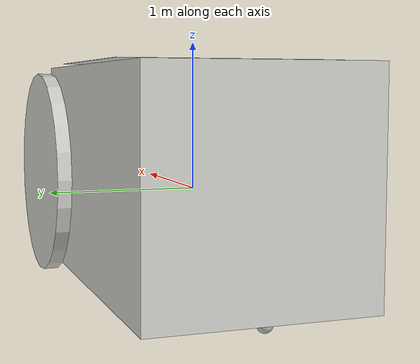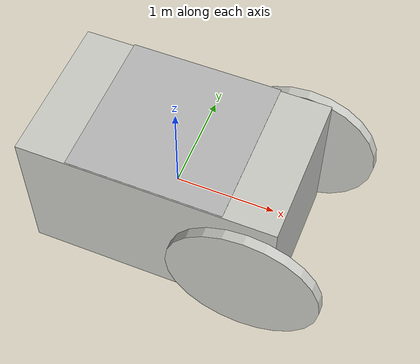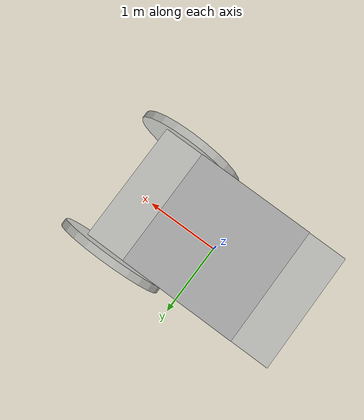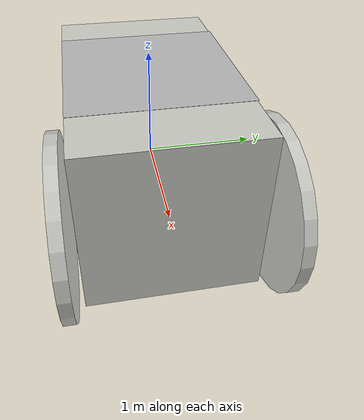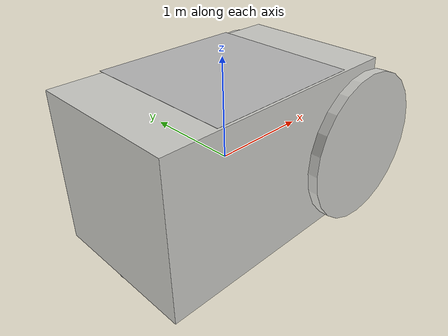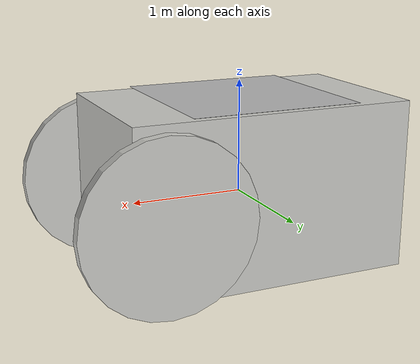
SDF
<?xml version='1.0'?>
<sdf version='1.4'>
  <model name="my_robot">
 <static>false</static>
<link name='chassis'>
            <pose>0 0 .1 0 0 0</pose>

            <collision name='collision'>
              <geometry>
                <box>
                  <size>2.5 1.5 1.5</size>
                </box>
              </geometry>
            </collision>

            <visual name='visual'>
              <geometry>
                <box>
                  <size>2.5 1.5 1.5</size>
                </box>
              </geometry>
<material>
      	 <script>
       	 	<uri>file://media/materials/scripts/gazebo.material</uri>
        <name>Gazebo/CeilingTiled</name>
      	</script>
        </material>
            </visual>
<visual name="target">
<pose>0 0 0.77 0 0 0</pose>
        <cast_shadows>false</cast_shadows>
        <geometry>
          <plane>
            <normal>0 0 1</normal>
            <size>1.5 1.5</size>
          </plane>
        </geometry>
        <material>
      	 <script>
       	 	<uri>model://my_robot/materials/scripts</uri>
       	 	<uri>model://my_robot/materials/textures</uri>
       	 	<name>Target/Image</name>
      	</script>
        </material>
      </visual>
<collision name='caster_collision'>
            <pose>-1.2 0 -0.75 0 0 0</pose>
            <geometry>
                <sphere>
                <radius>.05</radius>
              </sphere>
            </geometry>

            <surface>
              <friction>
                <ode>
                  <mu>0</mu>
                  <mu2>0</mu2>
                  <slip1>1.0</slip1>
                  <slip2>1.0</slip2>
                </ode>
              </friction>
            </surface>
          </collision>

          <visual name='caster_visual'>
            <pose>-1.2 0 -0.75 0 0 0</pose>
            <geometry>
              <sphere>
                <radius>.05</radius>
              </sphere>
            </geometry>
          </visual>
          </link>
<link name="left_wheel">
        <pose>1.0 0.85 0.05 0 1.5707 1.5707</pose>
        <collision name="collision">
          <geometry>
            <cylinder>
              <radius>.75</radius>
              <length>.1</length>
            </cylinder>
          </geometry>
        </collision>
        <visual name="visual">
          <geometry>
            <cylinder>
              <radius>.75</radius>
              <length>.1</length>
            </cylinder>
          </geometry>
<material>
      	 <script>
       	 	<uri>file://media/materials/scripts/gazebo.material</uri>
        <name>Gazebo/CeilingTiled</name>
      	</script>
        </material>
        </visual>
      </link>
<link name="right_wheel">
        <pose>1.0 -0.85 0.05 0 1.5707 1.5707</pose>
        <collision name="collision">
          <geometry>
            <cylinder>
              <radius>.75</radius>
              <length>.1</length>
            </cylinder>
          </geometry>
        </collision>
        <visual name="visual">
          <geometry>
            <cylinder>
              <radius>.75</radius>
              <length>.1</length>
            </cylinder>
          </geometry>
<material>
      	 <script>
       	 	<uri>file://media/materials/scripts/gazebo.material</uri>
        <name>Gazebo/CeilingTiled</name>
      	</script>
        </material>
        </visual>

      </link>
      <joint type="revolute" name="left_wheel_hinge">
        <pose>0 0 -0.03 0 0 0</pose>
        <child>left_wheel</child>
        <parent>chassis</parent>
        <axis>
          <xyz>0 1 0</xyz>
        </axis>
      </joint>

      <joint type="revolute" name="right_wheel_hinge">
        <pose>0 0 0.03 0 0 0</pose>
        <child>right_wheel</child>
        <parent>chassis</parent>
        <axis>
          <xyz>0 1 0</xyz>
        </axis>
      </joint>

	<plugin name="model_push" filename="libmodel_push.so"/>

  </model>
</sdf>
